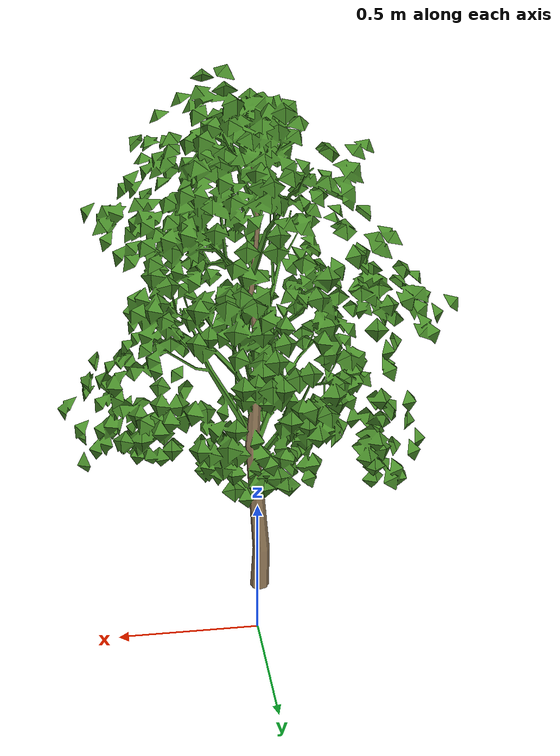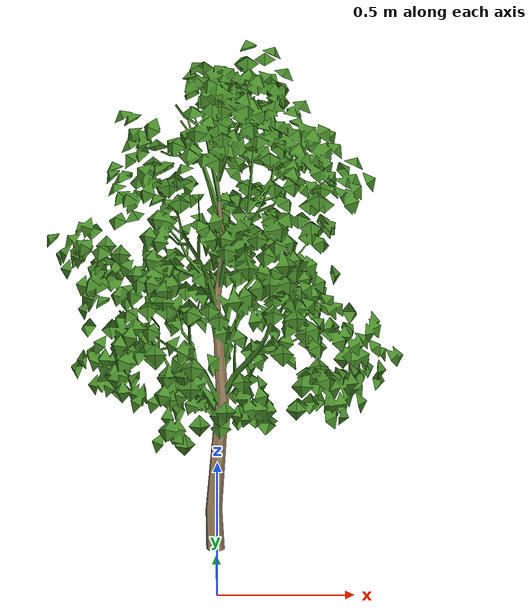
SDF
<?xml version="1.0"?>
<sdf version='1.10'>
    <model name="apple_plant">
        <link name="apple_plant_link">
            <!-- Leafs do not have collision -->
            <collision name="apple_plant_collision">
                <geometry>
                    <mesh>
                        <uri>model://ApplePlant/meshes/TreeTrunk.dae</uri>
                        <scale>0.7 0.7 0.7</scale>
                    </mesh>
                </geometry>
            </collision>

            <visual name="apple_plant_visual">
                <geometry>
                    <mesh>
                        <uri>model://ApplePlant/meshes/Tree.dae</uri>
                        <scale>0.7 0.7 0.7</scale>
                    </mesh>
                </geometry>
            </visual>

            <inertial>
                <mass>20</mass>
                <inertia>
                    <ixx>6.779</ixx>
                    <ixy>0</ixy>
                    <ixz>0</ixz>
                    <iyy>6.779</iyy>
                    <iyz>0</iyz>
                    <izz>0.225</izz>
                </inertia>
            </inertial>
        </link>

        <joint name="world_joint" type="fixed">
            <parent>world</parent>
            <child>apple_plant_link</child>
        </joint>
    </model>
</sdf>
